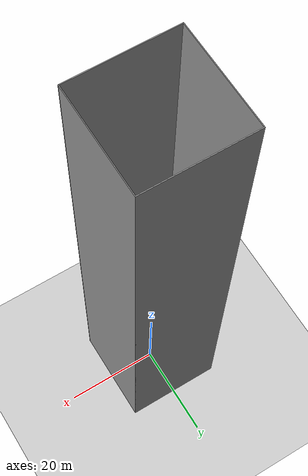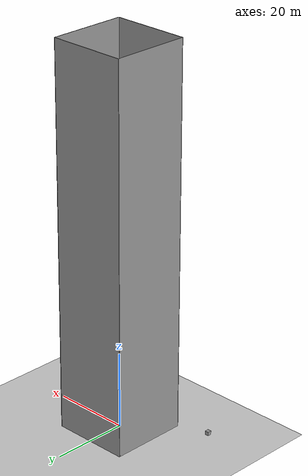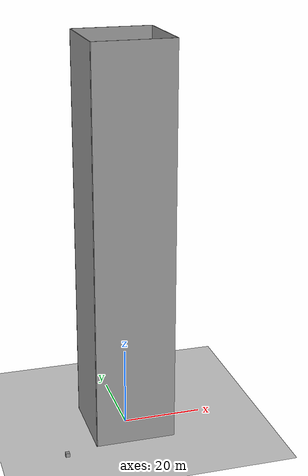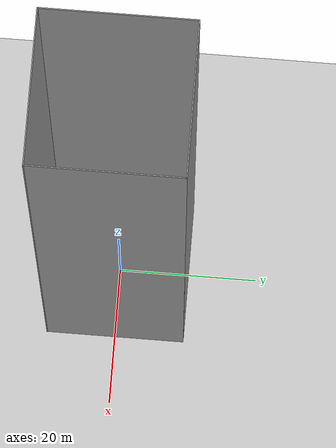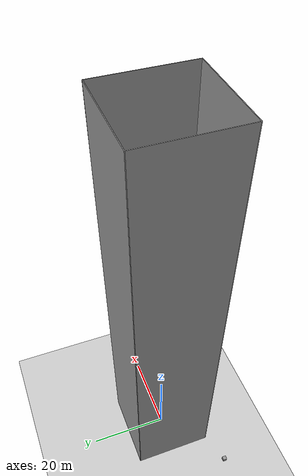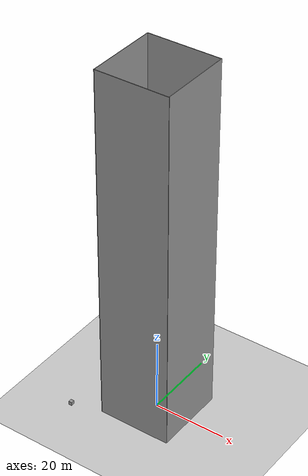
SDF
<sdf version="1.6">
 <world name="default">
  <light name="sun" type="directional">
   <pose>0 0 10 0 -0 0</pose>
   <diffuse>0.8 0.8 0.8 1</diffuse>
   <specular>0.2 0.2 0.2 1</specular>
   <attenuation>
    <range>1000</range>
    <constant>0.9</constant>
    <linear>0.01</linear>
    <quadratic>0.001</quadratic>
   </attenuation>
   <direction>-0.5 0.1 -0.9</direction>
  </light>
  <model name="ground_plane">
   <static>1</static>
   <link name="link">
    <collision name="collision">
     <geometry><plane><normal>0 0 1</normal><size>100 100</size></plane></geometry>
     <surface><friction><ode><mu>100</mu><mu2>50</mu2></ode></friction></surface>
    </collision>
    <visual name="visual">
     <cast_shadows>0</cast_shadows>
     <geometry><plane><normal>0 0 1</normal><size>100 100</size></plane></geometry>
     <material>
      <script><uri>file://media/materials/scripts/gazebo.material</uri><name>Gazebo/Grey</name></script>
     </material>
    </visual>
   </link>
  </model>
  <gravity>0 0 -9.8</gravity>
  <magnetic_field>6e-06 2.3e-05 -4.2e-05</magnetic_field>
  <atmosphere type="adiabatic"/>
  <physics name="default_physics" default="0" type="ode">
   <max_step_size>0.001</max_step_size>
   <real_time_factor>1</real_time_factor>
   <real_time_update_rate>1000</real_time_update_rate>
  </physics>
  <scene><ambient>0.4 0.4 0.4 1</ambient><background>0.7 0.7 0.7 1</background><shadows>1</shadows></scene>
  <audio><device>default</device></audio>
  <spherical_coordinates>
   <surface_model>EARTH_WGS84</surface_model>
   <latitude_deg>0</latitude_deg>
   <longitude_deg>0</longitude_deg>
   <elevation>0</elevation>
   <heading_deg>0</heading_deg>
  </spherical_coordinates>
  <model name="test">
   <link name="Wall_10">
    <collision name="Wall_10_Collision">
     <geometry><box><size>20 0.15 100</size></box></geometry>
     <pose>0 0 50 0 -0 0</pose>
    </collision>
    <visual name="Wall_10_Visual">
     <pose>0 0 50 0 -0 0</pose>
     <geometry><box><size>20 0.15 100</size></box></geometry>
     <material>
      <script><uri>file://media/materials/scripts/gazebo.material</uri><name>Gazebo/Grey</name></script>
      <ambient>1 1 1 1</ambient>
     </material>
     <meta><layer>0</layer></meta>
    </visual>
    <pose>-10 -0.075 0 0 -0 1.5708</pose>
   </link>
   <link name="Wall_6">
    <collision name="Wall_6_Collision">
     <geometry><box><size>20.15 0.15 100</size></box></geometry>
     <pose>0 0 50 0 -0 0</pose>
    </collision>
    <visual name="Wall_6_Visual">
     <pose>0 0 50 0 -0 0</pose>
     <geometry><box><size>20.15 0.15 100</size></box></geometry>
     <material>
      <script><uri>file://media/materials/scripts/gazebo.material</uri><name>Gazebo/Grey</name></script>
      <ambient>1 1 1 1</ambient>
     </material>
     <meta><layer>0</layer></meta>
    </visual>
    <pose>0 10 0 0 -0 0</pose>
   </link>
   <link name="Wall_8">
    <collision name="Wall_8_Collision">
     <geometry><box><size>20.15 0.15 100</size></box></geometry>
     <pose>0 0 50 0 -0 0</pose>
    </collision>
    <visual name="Wall_8_Visual">
     <pose>0 0 50 0 -0 0</pose>
     <geometry><box><size>20.15 0.15 100</size></box></geometry>
     <material>
      <script><uri>file://media/materials/scripts/gazebo.material</uri><name>Gazebo/Grey</name></script>
      <ambient>1 1 1 1</ambient>
     </material>
     <meta><layer>0</layer></meta>
    </visual>
    <pose>10 0 0 0 -0 -1.5708</pose>
   </link>
   <link name="Wall_9">
    <collision name="Wall_9_Collision">
     <geometry><box><size>20.15 0.15 100</size></box></geometry>
     <pose>0 0 50 0 -0 0</pose>
    </collision>
    <visual name="Wall_9_Visual">
     <pose>0 0 50 0 -0 0</pose>
     <geometry><box><size>20.15 0.15 100</size></box></geometry>
     <material>
      <script><uri>file://media/materials/scripts/gazebo.material</uri><name>Gazebo/Grey</name></script>
      <ambient>1 1 1 1</ambient>
     </material>
     <meta><layer>0</layer></meta>
    </visual>
    <pose>0 -10 0 0 -0 3.14159</pose>
   </link>
   <static>1</static>
  </model>
  <model name="unit_box">
   <pose>-18.0287 -12.3272 0.5 0 -0 0</pose>
   <link name="link">
    <inertial>
     <mass>1</mass>
     <inertia>
      <ixx>0.166667</ixx>
      <ixy>0</ixy>
      <ixz>0</ixz>
      <iyy>0.166667</iyy>
      <iyz>0</iyz>
      <izz>0.166667</izz>
     </inertia>
    </inertial>
    <collision name="collision"><geometry><box><size>1 1 1</size></box></geometry></collision>
    <visual name="visual">
     <geometry><box><size>1 1 1</size></box></geometry>
     <material>
      <script><name>Gazebo/Grey</name><uri>file://media/materials/scripts/gazebo.material</uri></script>
     </material>
    </visual>
   </link>
  </model>
 </world>
</sdf>
